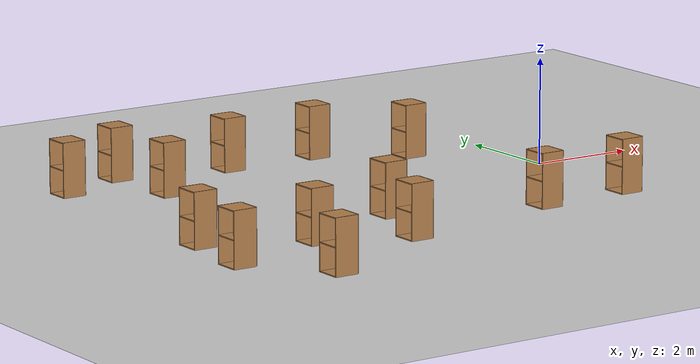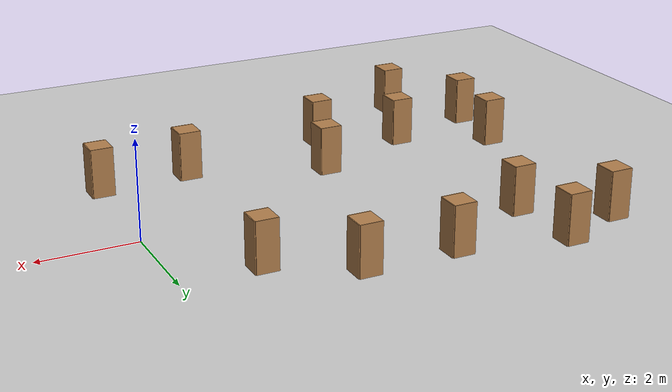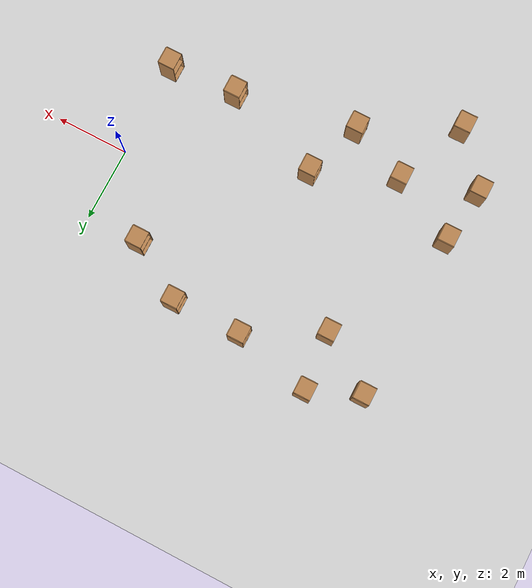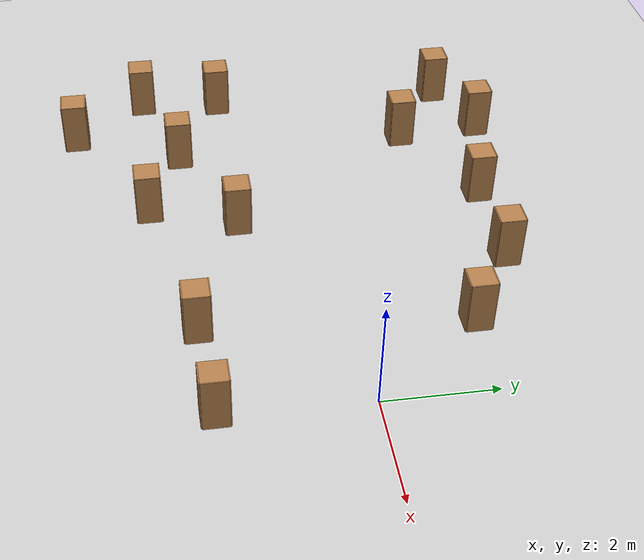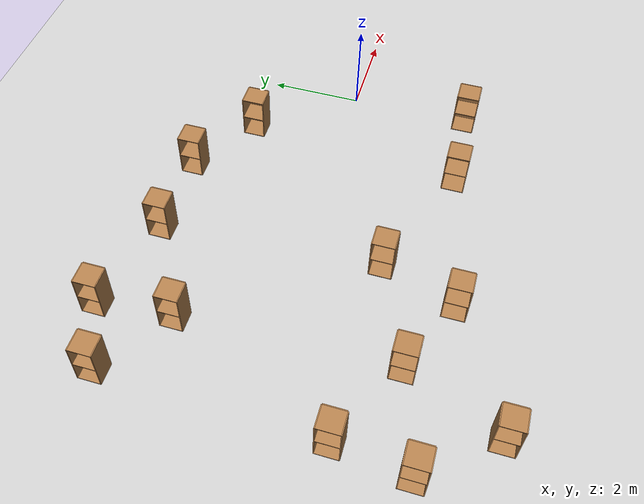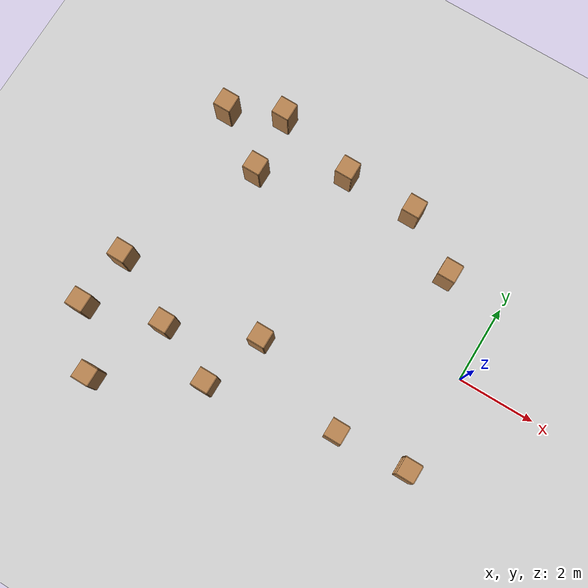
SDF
<sdf version="1.6">
 <world name="default">
  <model name="ground_plane">
   <static>1</static>
   <link name="link">
    <collision name="collision">
     <geometry><plane><normal>0 0 1</normal><size>100 100</size></plane></geometry>
     <surface><friction><ode><mu>100</mu><mu2>50</mu2></ode></friction></surface>
    </collision>
    <visual name="visual">
     <cast_shadows>0</cast_shadows>
     <geometry><plane><normal>0 0 1</normal><size>100 100</size></plane></geometry>
     <material>
      <script><uri>file://media/materials/scripts/gazebo.material</uri><name>Gazebo/Grey</name></script>
     </material>
    </visual>
   </link>
  </model>
  <model name="cabinet_24">
   <static>1</static>
   <link name="cabinet_bottom_plate">
    <inertial>
     <pose>0 0 -1 0 -0 0</pose>
     <inertia><ixx>2.05</ixx><ixy>0</ixy><ixz>0</ixz><iyy>2.05</iyy><iyz>0</iyz><izz>2.05</izz></inertia>
     <mass>25</mass>
    </inertial>
    <collision name="cabinet_bottom_plate_geom">
     <pose>0 0 0.01 0 -0 0</pose>
     <geometry><box><size>0.45 0.45 0.02</size></box></geometry>
    </collision>
    <visual name="cabinet_bottom_plate_geom_visual">
     <pose>0 0 0.01 0 -0 0</pose>
     <geometry><box><size>0.45 0.45 0.02</size></box></geometry>
     <material>
      <script><uri>file://media/materials/scripts/gazebo.material</uri><name>Gazebo/Wood</name></script>
     </material>
    </visual>
    <collision name="cabinet_bottom_plate_geom_cabinet_back_plate">
     <pose>0.235 0 0.51 0 -0 0</pose>
     <geometry><box><size>0.02 0.45 1.02</size></box></geometry>
    </collision>
    <visual name="cabinet_bottom_plate_geom_cabinet_back_plate_visual">
     <pose>0.235 0 0.51 0 -0 0</pose>
     <geometry><box><size>0.02 0.45 1.02</size></box></geometry>
     <material>
      <script><uri>file://media/materials/scripts/gazebo.material</uri><name>Gazebo/Wood</name></script>
     </material>
    </visual>
    <collision name="cabinet_bottom_plate_geom_cabinet_left_plate">
     <pose>0 0.235 0.51 0 -0 0</pose>
     <geometry><box><size>0.45 0.02 1.02</size></box></geometry>
    </collision>
    <visual name="cabinet_bottom_plate_geom_cabinet_left_plate_visual">
     <pose>0 0.235 0.51 0 -0 0</pose>
     <geometry><box><size>0.45 0.02 1.02</size></box></geometry>
     <material>
      <script><uri>file://media/materials/scripts/gazebo.material</uri><name>Gazebo/Wood</name></script>
     </material>
    </visual>
    <collision name="cabinet_bottom_plate_geom_cabinet_middle_plate">
     <pose>0 0 0.51 0 -0 0</pose>
     <geometry><box><size>0.45 0.45 0.02</size></box></geometry>
    </collision>
    <visual name="cabinet_bottom_plate_geom_cabinet_middle_plate_visual">
     <pose>0 0 0.51 0 -0 0</pose>
     <geometry><box><size>0.45 0.45 0.02</size></box></geometry>
     <material>
      <script><uri>file://media/materials/scripts/gazebo.material</uri><name>Gazebo/Wood</name></script>
     </material>
    </visual>
    <collision name="cabinet_bottom_plate_geom_cabinet_right_plate">
     <pose>0 -0.235 0.51 0 -0 0</pose>
     <geometry><box><size>0.45 0.02 1.02</size></box></geometry>
    </collision>
    <visual name="cabinet_bottom_plate_geom_cabinet_right_plate_visual">
     <pose>0 -0.235 0.51 0 -0 0</pose>
     <geometry><box><size>0.45 0.02 1.02</size></box></geometry>
     <material>
      <script><uri>file://media/materials/scripts/gazebo.material</uri><name>Gazebo/Wood</name></script>
     </material>
    </visual>
    <collision name="cabinet_bottom_plate_geom_cabinet_top_plate">
     <pose>0 0 1.01 0 -0 0</pose>
     <geometry><box><size>0.45 0.45 0.02</size></box></geometry>
    </collision>
    <visual name="cabinet_bottom_plate_geom_cabinet_top_plate_visual">
     <pose>0 0 1.01 0 -0 0</pose>
     <geometry><box><size>0.45 0.45 0.02</size></box></geometry>
     <material>
      <script><uri>file://media/materials/scripts/gazebo.material</uri><name>Gazebo/Wood</name></script>
     </material>
    </visual>
   </link>
   <pose>-7.68774 -4.59205 0 0 -0 0</pose>
  </model>
  <model name="cabinet_28">
   <static>1</static>
   <link name="cabinet_bottom_plate">
    <inertial>
     <pose>0 0 -1 0 -0 0</pose>
     <inertia><ixx>2.05</ixx><ixy>0</ixy><ixz>0</ixz><iyy>2.05</iyy><iyz>0</iyz><izz>2.05</izz></inertia>
     <mass>25</mass>
    </inertial>
    <collision name="cabinet_bottom_plate_geom">
     <pose>0 0 0.01 0 -0 0</pose>
     <geometry><box><size>0.45 0.45 0.02</size></box></geometry>
    </collision>
    <visual name="cabinet_bottom_plate_geom_visual">
     <pose>0 0 0.01 0 -0 0</pose>
     <geometry><box><size>0.45 0.45 0.02</size></box></geometry>
     <material>
      <script><uri>file://media/materials/scripts/gazebo.material</uri><name>Gazebo/Wood</name></script>
     </material>
    </visual>
    <collision name="cabinet_bottom_plate_geom_cabinet_back_plate">
     <pose>0.235 0 0.51 0 -0 0</pose>
     <geometry><box><size>0.02 0.45 1.02</size></box></geometry>
    </collision>
    <visual name="cabinet_bottom_plate_geom_cabinet_back_plate_visual">
     <pose>0.235 0 0.51 0 -0 0</pose>
     <geometry><box><size>0.02 0.45 1.02</size></box></geometry>
     <material>
      <script><uri>file://media/materials/scripts/gazebo.material</uri><name>Gazebo/Wood</name></script>
     </material>
    </visual>
    <collision name="cabinet_bottom_plate_geom_cabinet_left_plate">
     <pose>0 0.235 0.51 0 -0 0</pose>
     <geometry><box><size>0.45 0.02 1.02</size></box></geometry>
    </collision>
    <visual name="cabinet_bottom_plate_geom_cabinet_left_plate_visual">
     <pose>0 0.235 0.51 0 -0 0</pose>
     <geometry><box><size>0.45 0.02 1.02</size></box></geometry>
     <material>
      <script><uri>file://media/materials/scripts/gazebo.material</uri><name>Gazebo/Wood</name></script>
     </material>
    </visual>
    <collision name="cabinet_bottom_plate_geom_cabinet_middle_plate">
     <pose>0 0 0.51 0 -0 0</pose>
     <geometry><box><size>0.45 0.45 0.02</size></box></geometry>
    </collision>
    <visual name="cabinet_bottom_plate_geom_cabinet_middle_plate_visual">
     <pose>0 0 0.51 0 -0 0</pose>
     <geometry><box><size>0.45 0.45 0.02</size></box></geometry>
     <material>
      <script><uri>file://media/materials/scripts/gazebo.material</uri><name>Gazebo/Wood</name></script>
     </material>
    </visual>
    <collision name="cabinet_bottom_plate_geom_cabinet_right_plate">
     <pose>0 -0.235 0.51 0 -0 0</pose>
     <geometry><box><size>0.45 0.02 1.02</size></box></geometry>
    </collision>
    <visual name="cabinet_bottom_plate_geom_cabinet_right_plate_visual">
     <pose>0 -0.235 0.51 0 -0 0</pose>
     <geometry><box><size>0.45 0.02 1.02</size></box></geometry>
     <material>
      <script><uri>file://media/materials/scripts/gazebo.material</uri><name>Gazebo/Wood</name></script>
     </material>
    </visual>
    <collision name="cabinet_bottom_plate_geom_cabinet_top_plate">
     <pose>0 0 1.01 0 -0 0</pose>
     <geometry><box><size>0.45 0.45 0.02</size></box></geometry>
    </collision>
    <visual name="cabinet_bottom_plate_geom_cabinet_top_plate_visual">
     <pose>0 0 1.01 0 -0 0</pose>
     <geometry><box><size>0.45 0.45 0.02</size></box></geometry>
     <material>
      <script><uri>file://media/materials/scripts/gazebo.material</uri><name>Gazebo/Wood</name></script>
     </material>
    </visual>
   </link>
   <pose>-8.79841 -3.21241 0 0 -0 0</pose>
  </model>
  <model name="cabinet_29">
   <static>1</static>
   <link name="cabinet_bottom_plate">
    <inertial>
     <pose>0 0 -1 0 -0 0</pose>
     <inertia><ixx>2.05</ixx><ixy>0</ixy><ixz>0</ixz><iyy>2.05</iyy><iyz>0</iyz><izz>2.05</izz></inertia>
     <mass>25</mass>
    </inertial>
    <collision name="cabinet_bottom_plate_geom">
     <pose>0 0 0.01 0 -0 0</pose>
     <geometry><box><size>0.45 0.45 0.02</size></box></geometry>
    </collision>
    <visual name="cabinet_bottom_plate_geom_visual">
     <pose>0 0 0.01 0 -0 0</pose>
     <geometry><box><size>0.45 0.45 0.02</size></box></geometry>
     <material>
      <script><uri>file://media/materials/scripts/gazebo.material</uri><name>Gazebo/Wood</name></script>
     </material>
    </visual>
    <collision name="cabinet_bottom_plate_geom_cabinet_back_plate">
     <pose>0.235 0 0.51 0 -0 0</pose>
     <geometry><box><size>0.02 0.45 1.02</size></box></geometry>
    </collision>
    <visual name="cabinet_bottom_plate_geom_cabinet_back_plate_visual">
     <pose>0.235 0 0.51 0 -0 0</pose>
     <geometry><box><size>0.02 0.45 1.02</size></box></geometry>
     <material>
      <script><uri>file://media/materials/scripts/gazebo.material</uri><name>Gazebo/Wood</name></script>
     </material>
    </visual>
    <collision name="cabinet_bottom_plate_geom_cabinet_left_plate">
     <pose>0 0.235 0.51 0 -0 0</pose>
     <geometry><box><size>0.45 0.02 1.02</size></box></geometry>
    </collision>
    <visual name="cabinet_bottom_plate_geom_cabinet_left_plate_visual">
     <pose>0 0.235 0.51 0 -0 0</pose>
     <geometry><box><size>0.45 0.02 1.02</size></box></geometry>
     <material>
      <script><uri>file://media/materials/scripts/gazebo.material</uri><name>Gazebo/Wood</name></script>
     </material>
    </visual>
    <collision name="cabinet_bottom_plate_geom_cabinet_middle_plate">
     <pose>0 0 0.51 0 -0 0</pose>
     <geometry><box><size>0.45 0.45 0.02</size></box></geometry>
    </collision>
    <visual name="cabinet_bottom_plate_geom_cabinet_middle_plate_visual">
     <pose>0 0 0.51 0 -0 0</pose>
     <geometry><box><size>0.45 0.45 0.02</size></box></geometry>
     <material>
      <script><uri>file://media/materials/scripts/gazebo.material</uri><name>Gazebo/Wood</name></script>
     </material>
    </visual>
    <collision name="cabinet_bottom_plate_geom_cabinet_right_plate">
     <pose>0 -0.235 0.51 0 -0 0</pose>
     <geometry><box><size>0.45 0.02 1.02</size></box></geometry>
    </collision>
    <visual name="cabinet_bottom_plate_geom_cabinet_right_plate_visual">
     <pose>0 -0.235 0.51 0 -0 0</pose>
     <geometry><box><size>0.45 0.02 1.02</size></box></geometry>
     <material>
      <script><uri>file://media/materials/scripts/gazebo.material</uri><name>Gazebo/Wood</name></script>
     </material>
    </visual>
    <collision name="cabinet_bottom_plate_geom_cabinet_top_plate">
     <pose>0 0 1.01 0 -0 0</pose>
     <geometry><box><size>0.45 0.45 0.02</size></box></geometry>
    </collision>
    <visual name="cabinet_bottom_plate_geom_cabinet_top_plate_visual">
     <pose>0 0 1.01 0 -0 0</pose>
     <geometry><box><size>0.45 0.45 0.02</size></box></geometry>
     <material>
      <script><uri>file://media/materials/scripts/gazebo.material</uri><name>Gazebo/Wood</name></script>
     </material>
    </visual>
   </link>
   <pose>-5.20972 -3.29363 0 0 -0 0</pose>
  </model>
  <model name="cabinet_31">
   <static>1</static>
   <link name="cabinet_bottom_plate">
    <inertial>
     <pose>0 0 -1 0 -0 0</pose>
     <inertia><ixx>2.05</ixx><ixy>0</ixy><ixz>0</ixz><iyy>2.05</iyy><iyz>0</iyz><izz>2.05</izz></inertia>
     <mass>25</mass>
    </inertial>
    <collision name="cabinet_bottom_plate_geom">
     <pose>0 0 0.01 0 -0 0</pose>
     <geometry><box><size>0.45 0.45 0.02</size></box></geometry>
    </collision>
    <visual name="cabinet_bottom_plate_geom_visual">
     <pose>0 0 0.01 0 -0 0</pose>
     <geometry><box><size>0.45 0.45 0.02</size></box></geometry>
     <material>
      <script><uri>file://media/materials/scripts/gazebo.material</uri><name>Gazebo/Wood</name></script>
     </material>
    </visual>
    <collision name="cabinet_bottom_plate_geom_cabinet_back_plate">
     <pose>0.235 0 0.51 0 -0 0</pose>
     <geometry><box><size>0.02 0.45 1.02</size></box></geometry>
    </collision>
    <visual name="cabinet_bottom_plate_geom_cabinet_back_plate_visual">
     <pose>0.235 0 0.51 0 -0 0</pose>
     <geometry><box><size>0.02 0.45 1.02</size></box></geometry>
     <material>
      <script><uri>file://media/materials/scripts/gazebo.material</uri><name>Gazebo/Wood</name></script>
     </material>
    </visual>
    <collision name="cabinet_bottom_plate_geom_cabinet_left_plate">
     <pose>0 0.235 0.51 0 -0 0</pose>
     <geometry><box><size>0.45 0.02 1.02</size></box></geometry>
    </collision>
    <visual name="cabinet_bottom_plate_geom_cabinet_left_plate_visual">
     <pose>0 0.235 0.51 0 -0 0</pose>
     <geometry><box><size>0.45 0.02 1.02</size></box></geometry>
     <material>
      <script><uri>file://media/materials/scripts/gazebo.material</uri><name>Gazebo/Wood</name></script>
     </material>
    </visual>
    <collision name="cabinet_bottom_plate_geom_cabinet_middle_plate">
     <pose>0 0 0.51 0 -0 0</pose>
     <geometry><box><size>0.45 0.45 0.02</size></box></geometry>
    </collision>
    <visual name="cabinet_bottom_plate_geom_cabinet_middle_plate_visual">
     <pose>0 0 0.51 0 -0 0</pose>
     <geometry><box><size>0.45 0.45 0.02</size></box></geometry>
     <material>
      <script><uri>file://media/materials/scripts/gazebo.material</uri><name>Gazebo/Wood</name></script>
     </material>
    </visual>
    <collision name="cabinet_bottom_plate_geom_cabinet_right_plate">
     <pose>0 -0.235 0.51 0 -0 0</pose>
     <geometry><box><size>0.45 0.02 1.02</size></box></geometry>
    </collision>
    <visual name="cabinet_bottom_plate_geom_cabinet_right_plate_visual">
     <pose>0 -0.235 0.51 0 -0 0</pose>
     <geometry><box><size>0.45 0.02 1.02</size></box></geometry>
     <material>
      <script><uri>file://media/materials/scripts/gazebo.material</uri><name>Gazebo/Wood</name></script>
     </material>
    </visual>
    <collision name="cabinet_bottom_plate_geom_cabinet_top_plate">
     <pose>0 0 1.01 0 -0 0</pose>
     <geometry><box><size>0.45 0.45 0.02</size></box></geometry>
    </collision>
    <visual name="cabinet_bottom_plate_geom_cabinet_top_plate_visual">
     <pose>0 0 1.01 0 -0 0</pose>
     <geometry><box><size>0.45 0.45 0.02</size></box></geometry>
     <material>
      <script><uri>file://media/materials/scripts/gazebo.material</uri><name>Gazebo/Wood</name></script>
     </material>
    </visual>
   </link>
   <pose>-8.60702 -1.69487 0 0 -0 0</pose>
  </model>
  <model name="cabinet_32">
   <static>1</static>
   <link name="cabinet_bottom_plate">
    <inertial>
     <pose>0 0 -1 0 -0 0</pose>
     <inertia><ixx>2.05</ixx><ixy>0</ixy><ixz>0</ixz><iyy>2.05</iyy><iyz>0</iyz><izz>2.05</izz></inertia>
     <mass>25</mass>
    </inertial>
    <collision name="cabinet_bottom_plate_geom">
     <pose>0 0 0.01 0 -0 0</pose>
     <geometry><box><size>0.45 0.45 0.02</size></box></geometry>
    </collision>
    <visual name="cabinet_bottom_plate_geom_visual">
     <pose>0 0 0.01 0 -0 0</pose>
     <geometry><box><size>0.45 0.45 0.02</size></box></geometry>
     <material>
      <script><uri>file://media/materials/scripts/gazebo.material</uri><name>Gazebo/Wood</name></script>
     </material>
    </visual>
    <collision name="cabinet_bottom_plate_geom_cabinet_back_plate">
     <pose>0.235 0 0.51 0 -0 0</pose>
     <geometry><box><size>0.02 0.45 1.02</size></box></geometry>
    </collision>
    <visual name="cabinet_bottom_plate_geom_cabinet_back_plate_visual">
     <pose>0.235 0 0.51 0 -0 0</pose>
     <geometry><box><size>0.02 0.45 1.02</size></box></geometry>
     <material>
      <script><uri>file://media/materials/scripts/gazebo.material</uri><name>Gazebo/Wood</name></script>
     </material>
    </visual>
    <collision name="cabinet_bottom_plate_geom_cabinet_left_plate">
     <pose>0 0.235 0.51 0 -0 0</pose>
     <geometry><box><size>0.45 0.02 1.02</size></box></geometry>
    </collision>
    <visual name="cabinet_bottom_plate_geom_cabinet_left_plate_visual">
     <pose>0 0.235 0.51 0 -0 0</pose>
     <geometry><box><size>0.45 0.02 1.02</size></box></geometry>
     <material>
      <script><uri>file://media/materials/scripts/gazebo.material</uri><name>Gazebo/Wood</name></script>
     </material>
    </visual>
    <collision name="cabinet_bottom_plate_geom_cabinet_middle_plate">
     <pose>0 0 0.51 0 -0 0</pose>
     <geometry><box><size>0.45 0.45 0.02</size></box></geometry>
    </collision>
    <visual name="cabinet_bottom_plate_geom_cabinet_middle_plate_visual">
     <pose>0 0 0.51 0 -0 0</pose>
     <geometry><box><size>0.45 0.45 0.02</size></box></geometry>
     <material>
      <script><uri>file://media/materials/scripts/gazebo.material</uri><name>Gazebo/Wood</name></script>
     </material>
    </visual>
    <collision name="cabinet_bottom_plate_geom_cabinet_right_plate">
     <pose>0 -0.235 0.51 0 -0 0</pose>
     <geometry><box><size>0.45 0.02 1.02</size></box></geometry>
    </collision>
    <visual name="cabinet_bottom_plate_geom_cabinet_right_plate_visual">
     <pose>0 -0.235 0.51 0 -0 0</pose>
     <geometry><box><size>0.45 0.02 1.02</size></box></geometry>
     <material>
      <script><uri>file://media/materials/scripts/gazebo.material</uri><name>Gazebo/Wood</name></script>
     </material>
    </visual>
    <collision name="cabinet_bottom_plate_geom_cabinet_top_plate">
     <pose>0 0 1.01 0 -0 0</pose>
     <geometry><box><size>0.45 0.45 0.02</size></box></geometry>
    </collision>
    <visual name="cabinet_bottom_plate_geom_cabinet_top_plate_visual">
     <pose>0 0 1.01 0 -0 0</pose>
     <geometry><box><size>0.45 0.45 0.02</size></box></geometry>
     <material>
      <script><uri>file://media/materials/scripts/gazebo.material</uri><name>Gazebo/Wood</name></script>
     </material>
    </visual>
   </link>
   <pose>-6.81977 -2.60726 0 0 -0 0</pose>
  </model>
  <model name="cabinet_33">
   <static>1</static>
   <link name="cabinet_bottom_plate">
    <inertial>
     <pose>0 0 -1 0 -0 0</pose>
     <inertia><ixx>2.05</ixx><ixy>0</ixy><ixz>0</ixz><iyy>2.05</iyy><iyz>0</iyz><izz>2.05</izz></inertia>
     <mass>25</mass>
    </inertial>
    <collision name="cabinet_bottom_plate_geom">
     <pose>0 0 0.01 0 -0 0</pose>
     <geometry><box><size>0.45 0.45 0.02</size></box></geometry>
    </collision>
    <visual name="cabinet_bottom_plate_geom_visual">
     <pose>0 0 0.01 0 -0 0</pose>
     <geometry><box><size>0.45 0.45 0.02</size></box></geometry>
     <material>
      <script><uri>file://media/materials/scripts/gazebo.material</uri><name>Gazebo/Wood</name></script>
     </material>
    </visual>
    <collision name="cabinet_bottom_plate_geom_cabinet_back_plate">
     <pose>0.235 0 0.51 0 -0 0</pose>
     <geometry><box><size>0.02 0.45 1.02</size></box></geometry>
    </collision>
    <visual name="cabinet_bottom_plate_geom_cabinet_back_plate_visual">
     <pose>0.235 0 0.51 0 -0 0</pose>
     <geometry><box><size>0.02 0.45 1.02</size></box></geometry>
     <material>
      <script><uri>file://media/materials/scripts/gazebo.material</uri><name>Gazebo/Wood</name></script>
     </material>
    </visual>
    <collision name="cabinet_bottom_plate_geom_cabinet_left_plate">
     <pose>0 0.235 0.51 0 -0 0</pose>
     <geometry><box><size>0.45 0.02 1.02</size></box></geometry>
    </collision>
    <visual name="cabinet_bottom_plate_geom_cabinet_left_plate_visual">
     <pose>0 0.235 0.51 0 -0 0</pose>
     <geometry><box><size>0.45 0.02 1.02</size></box></geometry>
     <material>
      <script><uri>file://media/materials/scripts/gazebo.material</uri><name>Gazebo/Wood</name></script>
     </material>
    </visual>
    <collision name="cabinet_bottom_plate_geom_cabinet_middle_plate">
     <pose>0 0 0.51 0 -0 0</pose>
     <geometry><box><size>0.45 0.45 0.02</size></box></geometry>
    </collision>
    <visual name="cabinet_bottom_plate_geom_cabinet_middle_plate_visual">
     <pose>0 0 0.51 0 -0 0</pose>
     <geometry><box><size>0.45 0.45 0.02</size></box></geometry>
     <material>
      <script><uri>file://media/materials/scripts/gazebo.material</uri><name>Gazebo/Wood</name></script>
     </material>
    </visual>
    <collision name="cabinet_bottom_plate_geom_cabinet_right_plate">
     <pose>0 -0.235 0.51 0 -0 0</pose>
     <geometry><box><size>0.45 0.02 1.02</size></box></geometry>
    </collision>
    <visual name="cabinet_bottom_plate_geom_cabinet_right_plate_visual">
     <pose>0 -0.235 0.51 0 -0 0</pose>
     <geometry><box><size>0.45 0.02 1.02</size></box></geometry>
     <material>
      <script><uri>file://media/materials/scripts/gazebo.material</uri><name>Gazebo/Wood</name></script>
     </material>
    </visual>
    <collision name="cabinet_bottom_plate_geom_cabinet_top_plate">
     <pose>0 0 1.01 0 -0 0</pose>
     <geometry><box><size>0.45 0.45 0.02</size></box></geometry>
    </collision>
    <visual name="cabinet_bottom_plate_geom_cabinet_top_plate_visual">
     <pose>0 0 1.01 0 -0 0</pose>
     <geometry><box><size>0.45 0.45 0.02</size></box></geometry>
     <material>
      <script><uri>file://media/materials/scripts/gazebo.material</uri><name>Gazebo/Wood</name></script>
     </material>
    </visual>
   </link>
   <pose>-4.63679 -1.70488 0 0 -0 0</pose>
  </model>
  <model name="cabinet_34">
   <static>1</static>
   <link name="cabinet_bottom_plate">
    <inertial>
     <pose>0 0 -1 0 -0 0</pose>
     <inertia><ixx>2.05</ixx><ixy>0</ixy><ixz>0</ixz><iyy>2.05</iyy><iyz>0</iyz><izz>2.05</izz></inertia>
     <mass>25</mass>
    </inertial>
    <collision name="cabinet_bottom_plate_geom">
     <pose>0 0 0.01 0 -0 0</pose>
     <geometry><box><size>0.45 0.45 0.02</size></box></geometry>
    </collision>
    <visual name="cabinet_bottom_plate_geom_visual">
     <pose>0 0 0.01 0 -0 0</pose>
     <geometry><box><size>0.45 0.45 0.02</size></box></geometry>
     <material>
      <script><uri>file://media/materials/scripts/gazebo.material</uri><name>Gazebo/Wood</name></script>
     </material>
    </visual>
    <collision name="cabinet_bottom_plate_geom_cabinet_back_plate">
     <pose>0.235 0 0.51 0 -0 0</pose>
     <geometry><box><size>0.02 0.45 1.02</size></box></geometry>
    </collision>
    <visual name="cabinet_bottom_plate_geom_cabinet_back_plate_visual">
     <pose>0.235 0 0.51 0 -0 0</pose>
     <geometry><box><size>0.02 0.45 1.02</size></box></geometry>
     <material>
      <script><uri>file://media/materials/scripts/gazebo.material</uri><name>Gazebo/Wood</name></script>
     </material>
    </visual>
    <collision name="cabinet_bottom_plate_geom_cabinet_left_plate">
     <pose>0 0.235 0.51 0 -0 0</pose>
     <geometry><box><size>0.45 0.02 1.02</size></box></geometry>
    </collision>
    <visual name="cabinet_bottom_plate_geom_cabinet_left_plate_visual">
     <pose>0 0.235 0.51 0 -0 0</pose>
     <geometry><box><size>0.45 0.02 1.02</size></box></geometry>
     <material>
      <script><uri>file://media/materials/scripts/gazebo.material</uri><name>Gazebo/Wood</name></script>
     </material>
    </visual>
    <collision name="cabinet_bottom_plate_geom_cabinet_middle_plate">
     <pose>0 0 0.51 0 -0 0</pose>
     <geometry><box><size>0.45 0.45 0.02</size></box></geometry>
    </collision>
    <visual name="cabinet_bottom_plate_geom_cabinet_middle_plate_visual">
     <pose>0 0 0.51 0 -0 0</pose>
     <geometry><box><size>0.45 0.45 0.02</size></box></geometry>
     <material>
      <script><uri>file://media/materials/scripts/gazebo.material</uri><name>Gazebo/Wood</name></script>
     </material>
    </visual>
    <collision name="cabinet_bottom_plate_geom_cabinet_right_plate">
     <pose>0 -0.235 0.51 0 -0 0</pose>
     <geometry><box><size>0.45 0.02 1.02</size></box></geometry>
    </collision>
    <visual name="cabinet_bottom_plate_geom_cabinet_right_plate_visual">
     <pose>0 -0.235 0.51 0 -0 0</pose>
     <geometry><box><size>0.45 0.02 1.02</size></box></geometry>
     <material>
      <script><uri>file://media/materials/scripts/gazebo.material</uri><name>Gazebo/Wood</name></script>
     </material>
    </visual>
    <collision name="cabinet_bottom_plate_geom_cabinet_top_plate">
     <pose>0 0 1.01 0 -0 0</pose>
     <geometry><box><size>0.45 0.45 0.02</size></box></geometry>
    </collision>
    <visual name="cabinet_bottom_plate_geom_cabinet_top_plate_visual">
     <pose>0 0 1.01 0 -0 0</pose>
     <geometry><box><size>0.45 0.45 0.02</size></box></geometry>
     <material>
      <script><uri>file://media/materials/scripts/gazebo.material</uri><name>Gazebo/Wood</name></script>
     </material>
    </visual>
   </link>
   <pose>-1.93819 -2.69089 0 0 -0 0</pose>
  </model>
  <model name="cabinet_35">
   <static>1</static>
   <link name="cabinet_bottom_plate">
    <inertial>
     <pose>0 0 -1 0 -0 0</pose>
     <inertia><ixx>2.05</ixx><ixy>0</ixy><ixz>0</ixz><iyy>2.05</iyy><iyz>0</iyz><izz>2.05</izz></inertia>
     <mass>25</mass>
    </inertial>
    <collision name="cabinet_bottom_plate_geom">
     <pose>0 0 0.01 0 -0 0</pose>
     <geometry><box><size>0.45 0.45 0.02</size></box></geometry>
    </collision>
    <visual name="cabinet_bottom_plate_geom_visual">
     <pose>0 0 0.01 0 -0 0</pose>
     <geometry><box><size>0.45 0.45 0.02</size></box></geometry>
     <material>
      <script><uri>file://media/materials/scripts/gazebo.material</uri><name>Gazebo/Wood</name></script>
     </material>
    </visual>
    <collision name="cabinet_bottom_plate_geom_cabinet_back_plate">
     <pose>0.235 0 0.51 0 -0 0</pose>
     <geometry><box><size>0.02 0.45 1.02</size></box></geometry>
    </collision>
    <visual name="cabinet_bottom_plate_geom_cabinet_back_plate_visual">
     <pose>0.235 0 0.51 0 -0 0</pose>
     <geometry><box><size>0.02 0.45 1.02</size></box></geometry>
     <material>
      <script><uri>file://media/materials/scripts/gazebo.material</uri><name>Gazebo/Wood</name></script>
     </material>
    </visual>
    <collision name="cabinet_bottom_plate_geom_cabinet_left_plate">
     <pose>0 0.235 0.51 0 -0 0</pose>
     <geometry><box><size>0.45 0.02 1.02</size></box></geometry>
    </collision>
    <visual name="cabinet_bottom_plate_geom_cabinet_left_plate_visual">
     <pose>0 0.235 0.51 0 -0 0</pose>
     <geometry><box><size>0.45 0.02 1.02</size></box></geometry>
     <material>
      <script><uri>file://media/materials/scripts/gazebo.material</uri><name>Gazebo/Wood</name></script>
     </material>
    </visual>
    <collision name="cabinet_bottom_plate_geom_cabinet_middle_plate">
     <pose>0 0 0.51 0 -0 0</pose>
     <geometry><box><size>0.45 0.45 0.02</size></box></geometry>
    </collision>
    <visual name="cabinet_bottom_plate_geom_cabinet_middle_plate_visual">
     <pose>0 0 0.51 0 -0 0</pose>
     <geometry><box><size>0.45 0.45 0.02</size></box></geometry>
     <material>
      <script><uri>file://media/materials/scripts/gazebo.material</uri><name>Gazebo/Wood</name></script>
     </material>
    </visual>
    <collision name="cabinet_bottom_plate_geom_cabinet_right_plate">
     <pose>0 -0.235 0.51 0 -0 0</pose>
     <geometry><box><size>0.45 0.02 1.02</size></box></geometry>
    </collision>
    <visual name="cabinet_bottom_plate_geom_cabinet_right_plate_visual">
     <pose>0 -0.235 0.51 0 -0 0</pose>
     <geometry><box><size>0.45 0.02 1.02</size></box></geometry>
     <material>
      <script><uri>file://media/materials/scripts/gazebo.material</uri><name>Gazebo/Wood</name></script>
     </material>
    </visual>
    <collision name="cabinet_bottom_plate_geom_cabinet_top_plate">
     <pose>0 0 1.01 0 -0 0</pose>
     <geometry><box><size>0.45 0.45 0.02</size></box></geometry>
    </collision>
    <visual name="cabinet_bottom_plate_geom_cabinet_top_plate_visual">
     <pose>0 0 1.01 0 -0 0</pose>
     <geometry><box><size>0.45 0.45 0.02</size></box></geometry>
     <material>
      <script><uri>file://media/materials/scripts/gazebo.material</uri><name>Gazebo/Wood</name></script>
     </material>
    </visual>
   </link>
   <pose>-0.056795 -2.58544 0 0 -0 0</pose>
  </model>
  <model name="cabinet_40">
   <static>1</static>
   <link name="cabinet_bottom_plate">
    <inertial>
     <pose>0 0 -1 0 -0 0</pose>
     <inertia><ixx>2.05</ixx><ixy>0</ixy><ixz>0</ixz><iyy>2.05</iyy><iyz>0</iyz><izz>2.05</izz></inertia>
     <mass>25</mass>
    </inertial>
    <collision name="cabinet_bottom_plate_geom">
     <pose>0 0 0.01 0 -0 0</pose>
     <geometry><box><size>0.45 0.45 0.02</size></box></geometry>
    </collision>
    <visual name="cabinet_bottom_plate_geom_visual">
     <pose>0 0 0.01 0 -0 0</pose>
     <geometry><box><size>0.45 0.45 0.02</size></box></geometry>
     <material>
      <script><uri>file://media/materials/scripts/gazebo.material</uri><name>Gazebo/Wood</name></script>
     </material>
    </visual>
    <collision name="cabinet_bottom_plate_geom_cabinet_back_plate">
     <pose>0.235 0 0.51 0 -0 0</pose>
     <geometry><box><size>0.02 0.45 1.02</size></box></geometry>
    </collision>
    <visual name="cabinet_bottom_plate_geom_cabinet_back_plate_visual">
     <pose>0.235 0 0.51 0 -0 0</pose>
     <geometry><box><size>0.02 0.45 1.02</size></box></geometry>
     <material>
      <script><uri>file://media/materials/scripts/gazebo.material</uri><name>Gazebo/Wood</name></script>
     </material>
    </visual>
    <collision name="cabinet_bottom_plate_geom_cabinet_left_plate">
     <pose>0 0.235 0.51 0 -0 0</pose>
     <geometry><box><size>0.45 0.02 1.02</size></box></geometry>
    </collision>
    <visual name="cabinet_bottom_plate_geom_cabinet_left_plate_visual">
     <pose>0 0.235 0.51 0 -0 0</pose>
     <geometry><box><size>0.45 0.02 1.02</size></box></geometry>
     <material>
      <script><uri>file://media/materials/scripts/gazebo.material</uri><name>Gazebo/Wood</name></script>
     </material>
    </visual>
    <collision name="cabinet_bottom_plate_geom_cabinet_middle_plate">
     <pose>0 0 0.51 0 -0 0</pose>
     <geometry><box><size>0.45 0.45 0.02</size></box></geometry>
    </collision>
    <visual name="cabinet_bottom_plate_geom_cabinet_middle_plate_visual">
     <pose>0 0 0.51 0 -0 0</pose>
     <geometry><box><size>0.45 0.45 0.02</size></box></geometry>
     <material>
      <script><uri>file://media/materials/scripts/gazebo.material</uri><name>Gazebo/Wood</name></script>
     </material>
    </visual>
    <collision name="cabinet_bottom_plate_geom_cabinet_right_plate">
     <pose>0 -0.235 0.51 0 -0 0</pose>
     <geometry><box><size>0.45 0.02 1.02</size></box></geometry>
    </collision>
    <visual name="cabinet_bottom_plate_geom_cabinet_right_plate_visual">
     <pose>0 -0.235 0.51 0 -0 0</pose>
     <geometry><box><size>0.45 0.02 1.02</size></box></geometry>
     <material>
      <script><uri>file://media/materials/scripts/gazebo.material</uri><name>Gazebo/Wood</name></script>
     </material>
    </visual>
    <collision name="cabinet_bottom_plate_geom_cabinet_top_plate">
     <pose>0 0 1.01 0 -0 0</pose>
     <geometry><box><size>0.45 0.45 0.02</size></box></geometry>
    </collision>
    <visual name="cabinet_bottom_plate_geom_cabinet_top_plate_visual">
     <pose>0 0 1.01 0 -0 0</pose>
     <geometry><box><size>0.45 0.45 0.02</size></box></geometry>
     <material>
      <script><uri>file://media/materials/scripts/gazebo.material</uri><name>Gazebo/Wood</name></script>
     </material>
    </visual>
   </link>
   <pose>-8.46052 2.86741 0 0 -0 0</pose>
  </model>
  <model name="cabinet_41">
   <static>1</static>
   <link name="cabinet_bottom_plate">
    <inertial>
     <pose>0 0 -1 0 -0 0</pose>
     <inertia><ixx>2.05</ixx><ixy>0</ixy><ixz>0</ixz><iyy>2.05</iyy><iyz>0</iyz><izz>2.05</izz></inertia>
     <mass>25</mass>
    </inertial>
    <collision name="cabinet_bottom_plate_geom">
     <pose>0 0 0.01 0 -0 0</pose>
     <geometry><box><size>0.45 0.45 0.02</size></box></geometry>
    </collision>
    <visual name="cabinet_bottom_plate_geom_visual">
     <pose>0 0 0.01 0 -0 0</pose>
     <geometry><box><size>0.45 0.45 0.02</size></box></geometry>
     <material>
      <script><uri>file://media/materials/scripts/gazebo.material</uri><name>Gazebo/Wood</name></script>
     </material>
    </visual>
    <collision name="cabinet_bottom_plate_geom_cabinet_back_plate">
     <pose>0.235 0 0.51 0 -0 0</pose>
     <geometry><box><size>0.02 0.45 1.02</size></box></geometry>
    </collision>
    <visual name="cabinet_bottom_plate_geom_cabinet_back_plate_visual">
     <pose>0.235 0 0.51 0 -0 0</pose>
     <geometry><box><size>0.02 0.45 1.02</size></box></geometry>
     <material>
      <script><uri>file://media/materials/scripts/gazebo.material</uri><name>Gazebo/Wood</name></script>
     </material>
    </visual>
    <collision name="cabinet_bottom_plate_geom_cabinet_left_plate">
     <pose>0 0.235 0.51 0 -0 0</pose>
     <geometry><box><size>0.45 0.02 1.02</size></box></geometry>
    </collision>
    <visual name="cabinet_bottom_plate_geom_cabinet_left_plate_visual">
     <pose>0 0.235 0.51 0 -0 0</pose>
     <geometry><box><size>0.45 0.02 1.02</size></box></geometry>
     <material>
      <script><uri>file://media/materials/scripts/gazebo.material</uri><name>Gazebo/Wood</name></script>
     </material>
    </visual>
    <collision name="cabinet_bottom_plate_geom_cabinet_middle_plate">
     <pose>0 0 0.51 0 -0 0</pose>
     <geometry><box><size>0.45 0.45 0.02</size></box></geometry>
    </collision>
    <visual name="cabinet_bottom_plate_geom_cabinet_middle_plate_visual">
     <pose>0 0 0.51 0 -0 0</pose>
     <geometry><box><size>0.45 0.45 0.02</size></box></geometry>
     <material>
      <script><uri>file://media/materials/scripts/gazebo.material</uri><name>Gazebo/Wood</name></script>
     </material>
    </visual>
    <collision name="cabinet_bottom_plate_geom_cabinet_right_plate">
     <pose>0 -0.235 0.51 0 -0 0</pose>
     <geometry><box><size>0.45 0.02 1.02</size></box></geometry>
    </collision>
    <visual name="cabinet_bottom_plate_geom_cabinet_right_plate_visual">
     <pose>0 -0.235 0.51 0 -0 0</pose>
     <geometry><box><size>0.45 0.02 1.02</size></box></geometry>
     <material>
      <script><uri>file://media/materials/scripts/gazebo.material</uri><name>Gazebo/Wood</name></script>
     </material>
    </visual>
    <collision name="cabinet_bottom_plate_geom_cabinet_top_plate">
     <pose>0 0 1.01 0 -0 0</pose>
     <geometry><box><size>0.45 0.45 0.02</size></box></geometry>
    </collision>
    <visual name="cabinet_bottom_plate_geom_cabinet_top_plate_visual">
     <pose>0 0 1.01 0 -0 0</pose>
     <geometry><box><size>0.45 0.45 0.02</size></box></geometry>
     <material>
      <script><uri>file://media/materials/scripts/gazebo.material</uri><name>Gazebo/Wood</name></script>
     </material>
    </visual>
   </link>
   <pose>-6.97736 1.85353 0 0 -0 0</pose>
  </model>
  <model name="cabinet_42">
   <static>1</static>
   <link name="cabinet_bottom_plate">
    <inertial>
     <pose>0 0 -1 0 -0 0</pose>
     <inertia><ixx>2.05</ixx><ixy>0</ixy><ixz>0</ixz><iyy>2.05</iyy><iyz>0</iyz><izz>2.05</izz></inertia>
     <mass>25</mass>
    </inertial>
    <collision name="cabinet_bottom_plate_geom">
     <pose>0 0 0.01 0 -0 0</pose>
     <geometry><box><size>0.45 0.45 0.02</size></box></geometry>
    </collision>
    <visual name="cabinet_bottom_plate_geom_visual">
     <pose>0 0 0.01 0 -0 0</pose>
     <geometry><box><size>0.45 0.45 0.02</size></box></geometry>
     <material>
      <script><uri>file://media/materials/scripts/gazebo.material</uri><name>Gazebo/Wood</name></script>
     </material>
    </visual>
    <collision name="cabinet_bottom_plate_geom_cabinet_back_plate">
     <pose>0.235 0 0.51 0 -0 0</pose>
     <geometry><box><size>0.02 0.45 1.02</size></box></geometry>
    </collision>
    <visual name="cabinet_bottom_plate_geom_cabinet_back_plate_visual">
     <pose>0.235 0 0.51 0 -0 0</pose>
     <geometry><box><size>0.02 0.45 1.02</size></box></geometry>
     <material>
      <script><uri>file://media/materials/scripts/gazebo.material</uri><name>Gazebo/Wood</name></script>
     </material>
    </visual>
    <collision name="cabinet_bottom_plate_geom_cabinet_left_plate">
     <pose>0 0.235 0.51 0 -0 0</pose>
     <geometry><box><size>0.45 0.02 1.02</size></box></geometry>
    </collision>
    <visual name="cabinet_bottom_plate_geom_cabinet_left_plate_visual">
     <pose>0 0.235 0.51 0 -0 0</pose>
     <geometry><box><size>0.45 0.02 1.02</size></box></geometry>
     <material>
      <script><uri>file://media/materials/scripts/gazebo.material</uri><name>Gazebo/Wood</name></script>
     </material>
    </visual>
    <collision name="cabinet_bottom_plate_geom_cabinet_middle_plate">
     <pose>0 0 0.51 0 -0 0</pose>
     <geometry><box><size>0.45 0.45 0.02</size></box></geometry>
    </collision>
    <visual name="cabinet_bottom_plate_geom_cabinet_middle_plate_visual">
     <pose>0 0 0.51 0 -0 0</pose>
     <geometry><box><size>0.45 0.45 0.02</size></box></geometry>
     <material>
      <script><uri>file://media/materials/scripts/gazebo.material</uri><name>Gazebo/Wood</name></script>
     </material>
    </visual>
    <collision name="cabinet_bottom_plate_geom_cabinet_right_plate">
     <pose>0 -0.235 0.51 0 -0 0</pose>
     <geometry><box><size>0.45 0.02 1.02</size></box></geometry>
    </collision>
    <visual name="cabinet_bottom_plate_geom_cabinet_right_plate_visual">
     <pose>0 -0.235 0.51 0 -0 0</pose>
     <geometry><box><size>0.45 0.02 1.02</size></box></geometry>
     <material>
      <script><uri>file://media/materials/scripts/gazebo.material</uri><name>Gazebo/Wood</name></script>
     </material>
    </visual>
    <collision name="cabinet_bottom_plate_geom_cabinet_top_plate">
     <pose>0 0 1.01 0 -0 0</pose>
     <geometry><box><size>0.45 0.45 0.02</size></box></geometry>
    </collision>
    <visual name="cabinet_bottom_plate_geom_cabinet_top_plate_visual">
     <pose>0 0 1.01 0 -0 0</pose>
     <geometry><box><size>0.45 0.45 0.02</size></box></geometry>
     <material>
      <script><uri>file://media/materials/scripts/gazebo.material</uri><name>Gazebo/Wood</name></script>
     </material>
    </visual>
   </link>
   <pose>-4.97937 2.93233 0 0 -0 0</pose>
  </model>
  <model name="cabinet_43">
   <static>1</static>
   <link name="cabinet_bottom_plate">
    <inertial>
     <pose>0 0 -1 0 -0 0</pose>
     <inertia><ixx>2.05</ixx><ixy>0</ixy><ixz>0</ixz><iyy>2.05</iyy><iyz>0</iyz><izz>2.05</izz></inertia>
     <mass>25</mass>
    </inertial>
    <collision name="cabinet_bottom_plate_geom">
     <pose>0 0 0.01 0 -0 0</pose>
     <geometry><box><size>0.45 0.45 0.02</size></box></geometry>
    </collision>
    <visual name="cabinet_bottom_plate_geom_visual">
     <pose>0 0 0.01 0 -0 0</pose>
     <geometry><box><size>0.45 0.45 0.02</size></box></geometry>
     <material>
      <script><uri>file://media/materials/scripts/gazebo.material</uri><name>Gazebo/Wood</name></script>
     </material>
    </visual>
    <collision name="cabinet_bottom_plate_geom_cabinet_back_plate">
     <pose>0.235 0 0.51 0 -0 0</pose>
     <geometry><box><size>0.02 0.45 1.02</size></box></geometry>
    </collision>
    <visual name="cabinet_bottom_plate_geom_cabinet_back_plate_visual">
     <pose>0.235 0 0.51 0 -0 0</pose>
     <geometry><box><size>0.02 0.45 1.02</size></box></geometry>
     <material>
      <script><uri>file://media/materials/scripts/gazebo.material</uri><name>Gazebo/Wood</name></script>
     </material>
    </visual>
    <collision name="cabinet_bottom_plate_geom_cabinet_left_plate">
     <pose>0 0.235 0.51 0 -0 0</pose>
     <geometry><box><size>0.45 0.02 1.02</size></box></geometry>
    </collision>
    <visual name="cabinet_bottom_plate_geom_cabinet_left_plate_visual">
     <pose>0 0.235 0.51 0 -0 0</pose>
     <geometry><box><size>0.45 0.02 1.02</size></box></geometry>
     <material>
      <script><uri>file://media/materials/scripts/gazebo.material</uri><name>Gazebo/Wood</name></script>
     </material>
    </visual>
    <collision name="cabinet_bottom_plate_geom_cabinet_middle_plate">
     <pose>0 0 0.51 0 -0 0</pose>
     <geometry><box><size>0.45 0.45 0.02</size></box></geometry>
    </collision>
    <visual name="cabinet_bottom_plate_geom_cabinet_middle_plate_visual">
     <pose>0 0 0.51 0 -0 0</pose>
     <geometry><box><size>0.45 0.45 0.02</size></box></geometry>
     <material>
      <script><uri>file://media/materials/scripts/gazebo.material</uri><name>Gazebo/Wood</name></script>
     </material>
    </visual>
    <collision name="cabinet_bottom_plate_geom_cabinet_right_plate">
     <pose>0 -0.235 0.51 0 -0 0</pose>
     <geometry><box><size>0.45 0.02 1.02</size></box></geometry>
    </collision>
    <visual name="cabinet_bottom_plate_geom_cabinet_right_plate_visual">
     <pose>0 -0.235 0.51 0 -0 0</pose>
     <geometry><box><size>0.45 0.02 1.02</size></box></geometry>
     <material>
      <script><uri>file://media/materials/scripts/gazebo.material</uri><name>Gazebo/Wood</name></script>
     </material>
    </visual>
    <collision name="cabinet_bottom_plate_geom_cabinet_top_plate">
     <pose>0 0 1.01 0 -0 0</pose>
     <geometry><box><size>0.45 0.45 0.02</size></box></geometry>
    </collision>
    <visual name="cabinet_bottom_plate_geom_cabinet_top_plate_visual">
     <pose>0 0 1.01 0 -0 0</pose>
     <geometry><box><size>0.45 0.45 0.02</size></box></geometry>
     <material>
      <script><uri>file://media/materials/scripts/gazebo.material</uri><name>Gazebo/Wood</name></script>
     </material>
    </visual>
   </link>
   <pose>-3.09547 2.92959 0 0 -0 0</pose>
  </model>
  <model name="cabinet_44">
   <static>1</static>
   <link name="cabinet_bottom_plate">
    <inertial>
     <pose>0 0 -1 0 -0 0</pose>
     <inertia><ixx>2.05</ixx><ixy>0</ixy><ixz>0</ixz><iyy>2.05</iyy><iyz>0</iyz><izz>2.05</izz></inertia>
     <mass>25</mass>
    </inertial>
    <collision name="cabinet_bottom_plate_geom">
     <pose>0 0 0.01 0 -0 0</pose>
     <geometry><box><size>0.45 0.45 0.02</size></box></geometry>
    </collision>
    <visual name="cabinet_bottom_plate_geom_visual">
     <pose>0 0 0.01 0 -0 0</pose>
     <geometry><box><size>0.45 0.45 0.02</size></box></geometry>
     <material>
      <script><uri>file://media/materials/scripts/gazebo.material</uri><name>Gazebo/Wood</name></script>
     </material>
    </visual>
    <collision name="cabinet_bottom_plate_geom_cabinet_back_plate">
     <pose>0.235 0 0.51 0 -0 0</pose>
     <geometry><box><size>0.02 0.45 1.02</size></box></geometry>
    </collision>
    <visual name="cabinet_bottom_plate_geom_cabinet_back_plate_visual">
     <pose>0.235 0 0.51 0 -0 0</pose>
     <geometry><box><size>0.02 0.45 1.02</size></box></geometry>
     <material>
      <script><uri>file://media/materials/scripts/gazebo.material</uri><name>Gazebo/Wood</name></script>
     </material>
    </visual>
    <collision name="cabinet_bottom_plate_geom_cabinet_left_plate">
     <pose>0 0.235 0.51 0 -0 0</pose>
     <geometry><box><size>0.45 0.02 1.02</size></box></geometry>
    </collision>
    <visual name="cabinet_bottom_plate_geom_cabinet_left_plate_visual">
     <pose>0 0.235 0.51 0 -0 0</pose>
     <geometry><box><size>0.45 0.02 1.02</size></box></geometry>
     <material>
      <script><uri>file://media/materials/scripts/gazebo.material</uri><name>Gazebo/Wood</name></script>
     </material>
    </visual>
    <collision name="cabinet_bottom_plate_geom_cabinet_middle_plate">
     <pose>0 0 0.51 0 -0 0</pose>
     <geometry><box><size>0.45 0.45 0.02</size></box></geometry>
    </collision>
    <visual name="cabinet_bottom_plate_geom_cabinet_middle_plate_visual">
     <pose>0 0 0.51 0 -0 0</pose>
     <geometry><box><size>0.45 0.45 0.02</size></box></geometry>
     <material>
      <script><uri>file://media/materials/scripts/gazebo.material</uri><name>Gazebo/Wood</name></script>
     </material>
    </visual>
    <collision name="cabinet_bottom_plate_geom_cabinet_right_plate">
     <pose>0 -0.235 0.51 0 -0 0</pose>
     <geometry><box><size>0.45 0.02 1.02</size></box></geometry>
    </collision>
    <visual name="cabinet_bottom_plate_geom_cabinet_right_plate_visual">
     <pose>0 -0.235 0.51 0 -0 0</pose>
     <geometry><box><size>0.45 0.02 1.02</size></box></geometry>
     <material>
      <script><uri>file://media/materials/scripts/gazebo.material</uri><name>Gazebo/Wood</name></script>
     </material>
    </visual>
    <collision name="cabinet_bottom_plate_geom_cabinet_top_plate">
     <pose>0 0 1.01 0 -0 0</pose>
     <geometry><box><size>0.45 0.45 0.02</size></box></geometry>
    </collision>
    <visual name="cabinet_bottom_plate_geom_cabinet_top_plate_visual">
     <pose>0 0 1.01 0 -0 0</pose>
     <geometry><box><size>0.45 0.45 0.02</size></box></geometry>
     <material>
      <script><uri>file://media/materials/scripts/gazebo.material</uri><name>Gazebo/Wood</name></script>
     </material>
    </visual>
   </link>
   <pose>-1.5631 1.99181 0 0 -0 0</pose>
  </model>
  <model name="cabinet_47">
   <static>1</static>
   <link name="cabinet_bottom_plate">
    <inertial>
     <pose>0 0 -1 0 -0 0</pose>
     <inertia><ixx>2.05</ixx><ixy>0</ixy><ixz>0</ixz><iyy>2.05</iyy><iyz>0</iyz><izz>2.05</izz></inertia>
     <mass>25</mass>
    </inertial>
    <collision name="cabinet_bottom_plate_geom">
     <pose>0 0 0.01 0 -0 0</pose>
     <geometry><box><size>0.45 0.45 0.02</size></box></geometry>
    </collision>
    <visual name="cabinet_bottom_plate_geom_visual">
     <pose>0 0 0.01 0 -0 0</pose>
     <geometry><box><size>0.45 0.45 0.02</size></box></geometry>
     <material>
      <script><uri>file://media/materials/scripts/gazebo.material</uri><name>Gazebo/Wood</name></script>
     </material>
    </visual>
    <collision name="cabinet_bottom_plate_geom_cabinet_back_plate">
     <pose>0.235 0 0.51 0 -0 0</pose>
     <geometry><box><size>0.02 0.45 1.02</size></box></geometry>
    </collision>
    <visual name="cabinet_bottom_plate_geom_cabinet_back_plate_visual">
     <pose>0.235 0 0.51 0 -0 0</pose>
     <geometry><box><size>0.02 0.45 1.02</size></box></geometry>
     <material>
      <script><uri>file://media/materials/scripts/gazebo.material</uri><name>Gazebo/Wood</name></script>
     </material>
    </visual>
    <collision name="cabinet_bottom_plate_geom_cabinet_left_plate">
     <pose>0 0.235 0.51 0 -0 0</pose>
     <geometry><box><size>0.45 0.02 1.02</size></box></geometry>
    </collision>
    <visual name="cabinet_bottom_plate_geom_cabinet_left_plate_visual">
     <pose>0 0.235 0.51 0 -0 0</pose>
     <geometry><box><size>0.45 0.02 1.02</size></box></geometry>
     <material>
      <script><uri>file://media/materials/scripts/gazebo.material</uri><name>Gazebo/Wood</name></script>
     </material>
    </visual>
    <collision name="cabinet_bottom_plate_geom_cabinet_middle_plate">
     <pose>0 0 0.51 0 -0 0</pose>
     <geometry><box><size>0.45 0.45 0.02</size></box></geometry>
    </collision>
    <visual name="cabinet_bottom_plate_geom_cabinet_middle_plate_visual">
     <pose>0 0 0.51 0 -0 0</pose>
     <geometry><box><size>0.45 0.45 0.02</size></box></geometry>
     <material>
      <script><uri>file://media/materials/scripts/gazebo.material</uri><name>Gazebo/Wood</name></script>
     </material>
    </visual>
    <collision name="cabinet_bottom_plate_geom_cabinet_right_plate">
     <pose>0 -0.235 0.51 0 -0 0</pose>
     <geometry><box><size>0.45 0.02 1.02</size></box></geometry>
    </collision>
    <visual name="cabinet_bottom_plate_geom_cabinet_right_plate_visual">
     <pose>0 -0.235 0.51 0 -0 0</pose>
     <geometry><box><size>0.45 0.02 1.02</size></box></geometry>
     <material>
      <script><uri>file://media/materials/scripts/gazebo.material</uri><name>Gazebo/Wood</name></script>
     </material>
    </visual>
    <collision name="cabinet_bottom_plate_geom_cabinet_top_plate">
     <pose>0 0 1.01 0 -0 0</pose>
     <geometry><box><size>0.45 0.45 0.02</size></box></geometry>
    </collision>
    <visual name="cabinet_bottom_plate_geom_cabinet_top_plate_visual">
     <pose>0 0 1.01 0 -0 0</pose>
     <geometry><box><size>0.45 0.45 0.02</size></box></geometry>
     <material>
      <script><uri>file://media/materials/scripts/gazebo.material</uri><name>Gazebo/Wood</name></script>
     </material>
    </visual>
   </link>
   <pose>-7.1071 3.43309 0 0 -0 0</pose>
  </model>
 </world>
</sdf>
